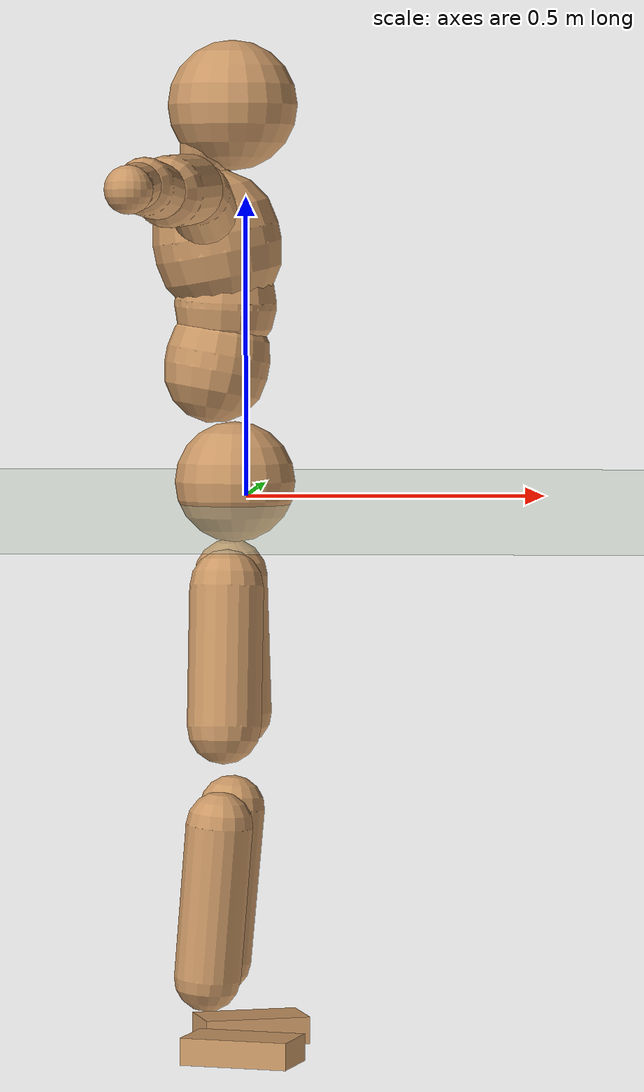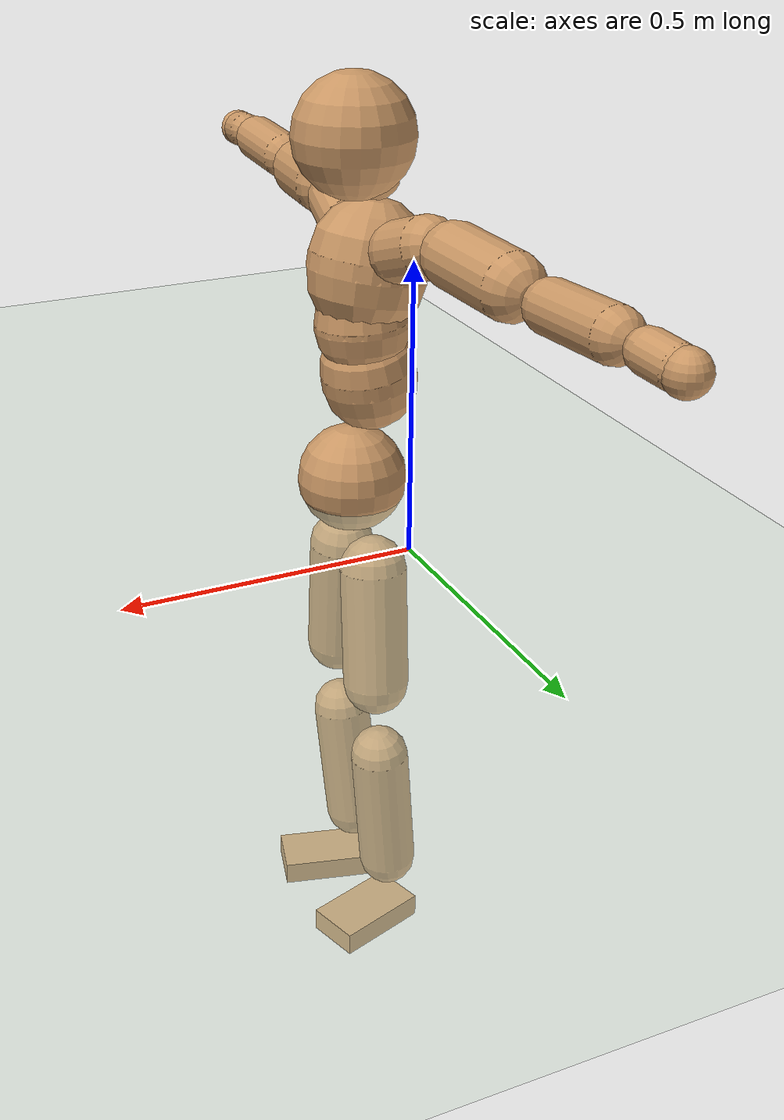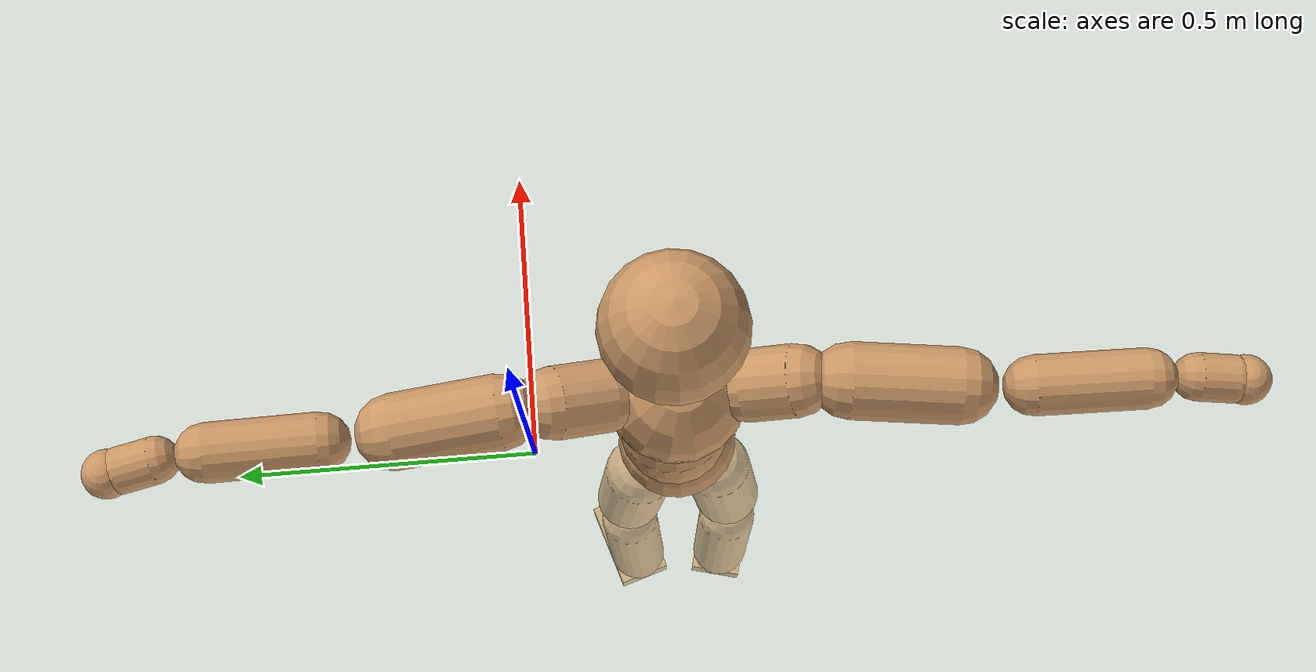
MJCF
<mujoco model="humanoid">
  <compiler coordinate="local"/>
  <default>
    <joint damping="0.0" armature="0.01" stiffness="0.0" limited="true"/>
    <geom conaffinity="1" condim="3" contype="7" margin="0.001" rgba="0.8 0.6 .4 1"/>
  </default>
  <asset>
    <texture type="skybox" builtin="gradient" rgb1=".4 .5 .6" rgb2="0 0 0" width="100" height="100"/>
    <texture builtin="flat" height="1278" mark="cross" markrgb="1 1 1" name="texgeom" random="0.01" rgb1="0.8 0.6 0.4" rgb2="0.8 0.6 0.4" type="cube" width="127"/>
    <texture builtin="checker" height="100" name="texplane" rgb1="0 0 0" rgb2="0.8 0.8 0.8" type="2d" width="100"/>
    <material name="MatPlane" reflectance="0.5" shininess="1" specular="1" texrepeat="60 60" texture="texplane"/>
    <material name="geom" texture="texgeom" texuniform="true"/>
  </asset>
  <worldbody>
    <light cutoff="100" diffuse="1 1 1" dir="-0 0 -1.3" directional="true" exponent="1" pos="0 0 1.3" specular=".1 .1 .1"/>
    <geom conaffinity="1" condim="3" name="floor" pos="0 0 0" rgba="0.8 0.9 0.8 1" size="100 100 .2" type="plane" material="MatPlane"/>
    <body name="Pelvis" pos="-0.0023 -0.2397 0.0344">
      <freejoint name="Pelvis"/>
      <geom type="sphere" contype="1" conaffinity="1" density="500" size="0.0982" pos="0.0000 0.0000 0.0000" name="Pelvis"/>
      <body name="L_Hip" pos="-0.0133 0.0578 -0.0816">
        <joint name="L_Hip_x" type="hinge" pos="0 0 0" axis="1 0 0" stiffness="800" damping="80" armature="0.02" range="-180.0000 180.0000"/>
        <joint name="L_Hip_y" type="hinge" pos="0 0 0" axis="0 1 0" stiffness="800" damping="80" armature="0.02" range="-180.0000 180.0000"/>
        <joint name="L_Hip_z" type="hinge" pos="0 0 0" axis="0 0 1" stiffness="800" damping="80" armature="0.02" range="-180.0000 180.0000"/>
        <geom type="capsule" contype="1" conaffinity="1" density="500" fromto="0.0016 0.0082 -0.0757 0.0066 0.0326 -0.3028" size="0.0605" name="L_Hip"/>
        <body name="L_Knee" pos="0.0082 0.0408 -0.3785">
          <joint name="L_Knee_x" type="hinge" pos="0 0 0" axis="1 0 0" stiffness="800" damping="80" armature="0.02" range="-180.0000 180.0000"/>
          <joint name="L_Knee_y" type="hinge" pos="0 0 0" axis="0 1 0" stiffness="800" damping="80" armature="0.02" range="-180.0000 180.0000"/>
          <joint name="L_Knee_z" type="hinge" pos="0 0 0" axis="0 0 1" stiffness="800" damping="80" armature="0.02" range="-180.0000 180.0000"/>
          <geom type="capsule" contype="1" conaffinity="1" density="500" fromto="-0.0075 -0.0030 -0.0847 -0.0301 -0.0122 -0.3390" size="0.0542" name="L_Knee"/>
          <body name="L_Ankle" pos="-0.0376 -0.0152 -0.4237">
            <joint name="L_Ankle_x" type="hinge" pos="0 0 0" axis="1 0 0" stiffness="800" damping="80" armature="0.02" range="-180.0000 180.0000"/>
            <joint name="L_Ankle_y" type="hinge" pos="0 0 0" axis="0 1 0" stiffness="800" damping="80" armature="0.02" range="-180.0000 180.0000"/>
            <joint name="L_Ankle_z" type="hinge" pos="0 0 0" axis="0 0 1" stiffness="800" damping="80" armature="0.02" range="-180.0000 180.0000"/>
            <geom type="box" contype="1" conaffinity="1" density="500" pos="0.0608 0.0192 -0.0296" size="0.0879 0.0506 0.0223" quat="0.9883 0.0000 0.0000 0.1528" name="L_Ankle"/>
            <body name="L_Toe" pos="0.1215 0.0385 -0.0592">
              <joint name="L_Toe_x" type="hinge" pos="0 0 0" axis="1 0 0" stiffness="500" damping="50" armature="0.02" range="-180.0000 180.0000"/>
              <joint name="L_Toe_y" type="hinge" pos="0 0 0" axis="0 1 0" stiffness="500" damping="50" armature="0.02" range="-180.0000 180.0000"/>
              <joint name="L_Toe_z" type="hinge" pos="0 0 0" axis="0 0 1" stiffness="500" damping="50" armature="0.02" range="-180.0000 180.0000"/>
              <geom type="box" contype="1" conaffinity="1" density="500" pos="0.0000 0.0000 0.0288" size="0.0011 0.0025 0.0011" quat="0.9875 0.0000 0.0000 0.1577" name="L_Toe"/>
            </body>
          </body>
        </body>
      </body>
      <body name="R_Hip" pos="-0.0083 -0.0595 -0.0906">
        <joint name="R_Hip_x" type="hinge" pos="0 0 0" axis="1 0 0" stiffness="800" damping="80" armature="0.02" range="-180.0000 180.0000"/>
        <joint name="R_Hip_y" type="hinge" pos="0 0 0" axis="0 1 0" stiffness="800" damping="80" armature="0.02" range="-180.0000 180.0000"/>
        <joint name="R_Hip_z" type="hinge" pos="0 0 0" axis="0 0 1" stiffness="800" damping="80" armature="0.02" range="-180.0000 180.0000"/>
        <geom type="capsule" contype="1" conaffinity="1" density="500" fromto="-0.0008 -0.0083 -0.0754 -0.0034 -0.0330 -0.3017" size="0.06" name="R_Hip"/>
        <body name="R_Knee" pos="-0.0042 -0.0413 -0.3771">
          <joint name="R_Knee_x" type="hinge" pos="0 0 0" axis="1 0 0" stiffness="800" damping="80" armature="0.02" range="-180.0000 180.0000"/>
          <joint name="R_Knee_y" type="hinge" pos="0 0 0" axis="0 1 0" stiffness="800" damping="80" armature="0.02" range="-180.0000 180.0000"/>
          <joint name="R_Knee_z" type="hinge" pos="0 0 0" axis="0 0 1" stiffness="800" damping="80" armature="0.02" range="-180.0000 180.0000"/>
          <geom type="capsule" contype="1" conaffinity="1" density="500" fromto="-0.0069 0.0038 -0.0834 -0.0275 0.0152 -0.3337" size="0.0545" name="R_Knee"/>
          <body name="R_Ankle" pos="-0.0344 0.019 -0.4172">
            <joint name="R_Ankle_x" type="hinge" pos="0 0 0" axis="1 0 0" stiffness="800" damping="80" armature="0.02" range="-180.0000 180.0000"/>
            <joint name="R_Ankle_y" type="hinge" pos="0 0 0" axis="0 1 0" stiffness="800" damping="80" armature="0.02" range="-180.0000 180.0000"/>
            <joint name="R_Ankle_z" type="hinge" pos="0 0 0" axis="0 0 1" stiffness="800" damping="80" armature="0.02" range="-180.0000 180.0000"/>
            <geom type="box" contype="1" conaffinity="1" density="500" pos="0.0645 -0.0168 -0.0308" size="0.0898 0.0503 0.0222" quat="0.9919 0.0000 0.0000 -0.1271" name="R_Ankle"/>
            <body name="R_Toe" pos="0.1289 -0.0336 -0.0616">
              <joint name="R_Toe_x" type="hinge" pos="0 0 0" axis="1 0 0" stiffness="500" damping="50" armature="0.02" range="-180.0000 180.0000"/>
              <joint name="R_Toe_y" type="hinge" pos="0 0 0" axis="0 1 0" stiffness="500" damping="50" armature="0.02" range="-180.0000 180.0000"/>
              <joint name="R_Toe_z" type="hinge" pos="0 0 0" axis="0 0 1" stiffness="500" damping="50" armature="0.02" range="-180.0000 180.0000"/>
              <geom type="box" contype="1" conaffinity="1" density="500" pos="0.0000 0.0000 0.0303" size="0.0011 0.0025 0.0011" quat="0.9930 0.0000 0.0000 -0.1181" name="R_Toe"/>
            </body>
          </body>
        </body>
      </body>
      <body name="Torso" pos="-0.0416 0.0046 0.126">
        <joint name="Torso_x" type="hinge" pos="0 0 0" axis="1 0 0" stiffness="1000" damping="100" armature="0.02" range="-180.0000 180.0000"/>
        <joint name="Torso_y" type="hinge" pos="0 0 0" axis="0 1 0" stiffness="1000" damping="100" armature="0.02" range="-180.0000 180.0000"/>
        <joint name="Torso_z" type="hinge" pos="0 0 0" axis="0 0 1" stiffness="1000" damping="100" armature="0.02" range="-180.0000 180.0000"/>
        <geom type="capsule" contype="1" conaffinity="1" density="500" fromto="0.0149 0.0029 0.0808 0.0099 0.0019 0.0539" size="0.0848" name="Torso"/>
        <body name="Spine" pos="0.0248 0.0048 0.1347">
          <joint name="Spine_x" type="hinge" pos="0 0 0" axis="1 0 0" stiffness="1000" damping="100" armature="0.02" range="-180.0000 180.0000"/>
          <joint name="Spine_y" type="hinge" pos="0 0 0" axis="0 1 0" stiffness="1000" damping="100" armature="0.02" range="-180.0000 180.0000"/>
          <joint name="Spine_z" type="hinge" pos="0 0 0" axis="0 0 1" stiffness="1000" damping="100" armature="0.02" range="-180.0000 180.0000"/>
          <geom type="capsule" contype="1" conaffinity="1" density="500" fromto="0.0016 -0.0014 0.0327 0.0011 -0.0009 0.0218" size="0.0832" name="Spine"/>
          <body name="Chest" pos="0.0027 -0.0024 0.0545">
            <joint name="Chest_x" type="hinge" pos="0 0 0" axis="1 0 0" stiffness="1000" damping="100" armature="0.02" range="-180.0000 180.0000"/>
            <joint name="Chest_y" type="hinge" pos="0 0 0" axis="0 1 0" stiffness="1000" damping="100" armature="0.02" range="-180.0000 180.0000"/>
            <joint name="Chest_z" type="hinge" pos="0 0 0" axis="0 0 1" stiffness="1000" damping="100" armature="0.02" range="-180.0000 180.0000"/>
            <geom type="capsule" contype="1" conaffinity="1" density="500" fromto="-0.0173 -0.0050 0.0877 -0.0116 -0.0033 0.0585" size="0.1045" name="Chest"/>
            <body name="Neck" pos="-0.0385 -0.0135 0.2111">
              <joint name="Neck_x" type="hinge" pos="0 0 0" axis="1 0 0" stiffness="500" damping="50" armature="0.02" range="-180.0000 180.0000"/>
              <joint name="Neck_y" type="hinge" pos="0 0 0" axis="0 1 0" stiffness="500" damping="50" armature="0.02" range="-180.0000 180.0000"/>
              <joint name="Neck_z" type="hinge" pos="0 0 0" axis="0 0 1" stiffness="500" damping="50" armature="0.02" range="-180.0000 180.0000"/>
              <geom type="capsule" contype="1" conaffinity="1" density="500" fromto="0.0099 0.0020 0.0169 0.0396 0.0079 0.0675" size="0.0462" name="Neck"/>
              <body name="Head" pos="0.0495 0.0099 0.0844">
                <joint name="Head_x" type="hinge" pos="0 0 0" axis="1 0 0" stiffness="500" damping="50" armature="0.02" range="-180.0000 180.0000"/>
                <joint name="Head_y" type="hinge" pos="0 0 0" axis="0 1 0" stiffness="500" damping="50" armature="0.02" range="-180.0000 180.0000"/>
                <joint name="Head_z" type="hinge" pos="0 0 0" axis="0 0 1" stiffness="500" damping="50" armature="0.02" range="-180.0000 180.0000"/>
                <geom type="sphere" contype="1" conaffinity="1" density="500" size="0.1055" pos="0.0000 0.0000 0.0000" name="Head"/>
              </body>
            </body>
            <body name="L_Thorax" pos="-0.0222 0.0716 0.1143">
              <joint name="L_Thorax_x" type="hinge" pos="0 0 0" axis="1 0 0" stiffness="500" damping="50" armature="0.02" range="-180.0000 180.0000"/>
              <joint name="L_Thorax_y" type="hinge" pos="0 0 0" axis="0 1 0" stiffness="500" damping="50" armature="0.02" range="-180.0000 180.0000"/>
              <joint name="L_Thorax_z" type="hinge" pos="0 0 0" axis="0 0 1" stiffness="500" damping="50" armature="0.02" range="-180.0000 180.0000"/>
              <geom type="capsule" contype="1" conaffinity="1" density="500" fromto="-0.0041 0.0247 0.0085 -0.0166 0.0988 0.0341" size="0.0534" name="L_Thorax"/>
              <body name="L_Shoulder" pos="-0.0207 0.1234 0.0426">
                <joint name="L_Shoulder_x" type="hinge" pos="0 0 0" axis="1 0 0" stiffness="500" damping="50" armature="0.02" range="-720.0000 720.0000"/>
                <joint name="L_Shoulder_y" type="hinge" pos="0 0 0" axis="0 1 0" stiffness="500" damping="50" armature="0.02" range="-720.0000 720.0000"/>
                <joint name="L_Shoulder_z" type="hinge" pos="0 0 0" axis="0 0 1" stiffness="500" damping="50" armature="0.02" range="-720.0000 720.0000"/>
                <geom type="capsule" contype="1" conaffinity="1" density="500" fromto="-0.0047 0.0504 -0.0026 -0.0190 0.2017 -0.0105" size="0.0554" name="L_Shoulder"/>
                <body name="L_Elbow" pos="-0.0237 0.2521 -0.0132">
                  <joint name="L_Elbow_x" type="hinge" pos="0 0 0" axis="1 0 0" stiffness="500" damping="50" armature="0.02" range="-720.0000 720.0000"/>
                  <joint name="L_Elbow_y" type="hinge" pos="0 0 0" axis="0 1 0" stiffness="500" damping="50" armature="0.02" range="-720.0000 720.0000"/>
                  <joint name="L_Elbow_z" type="hinge" pos="0 0 0" axis="0 0 1" stiffness="500" damping="50" armature="0.02" range="-720.0000 720.0000"/>
                  <geom type="capsule" contype="1" conaffinity="1" density="500" fromto="-0.0016 0.0527 0.0024 -0.0062 0.2108 0.0097" size="0.043" name="L_Elbow"/>
                  <body name="L_Wrist" pos="-0.0078 0.2635 0.0121">
                    <joint name="L_Wrist_x" type="hinge" pos="0 0 0" axis="1 0 0" stiffness="300" damping="30" armature="0.02" range="-180.0000 180.0000"/>
                    <joint name="L_Wrist_y" type="hinge" pos="0 0 0" axis="0 1 0" stiffness="300" damping="30" armature="0.02" range="-180.0000 180.0000"/>
                    <joint name="L_Wrist_z" type="hinge" pos="0 0 0" axis="0 0 1" stiffness="300" damping="30" armature="0.02" range="-180.0000 180.0000"/>
                    <geom type="capsule" contype="1" conaffinity="1" density="500" fromto="-0.0031 0.0172 -0.0021 -0.0123 0.0689 -0.0083" size="0.0341" name="L_Wrist"/>
                    <body name="L_Hand" pos="-0.0154 0.0861 -0.0104">
                      <joint name="L_Hand_x" type="hinge" pos="0 0 0" axis="1 0 0" stiffness="300" damping="30" armature="0.02" range="-180.0000 180.0000"/>
                      <joint name="L_Hand_y" type="hinge" pos="0 0 0" axis="0 1 0" stiffness="300" damping="30" armature="0.02" range="-180.0000 180.0000"/>
                      <joint name="L_Hand_z" type="hinge" pos="0 0 0" axis="0 0 1" stiffness="300" damping="30" armature="0.02" range="-180.0000 180.0000"/>
                      <geom type="sphere" contype="1" conaffinity="1" density="500" size="0.0354" pos="0.0000 0.0000 0.0000" name="L_Hand"/>
                    </body>
                  </body>
                </body>
              </body>
            </body>
            <body name="R_Thorax" pos="-0.0259 -0.083 0.1132">
              <joint name="R_Thorax_x" type="hinge" pos="0 0 0" axis="1 0 0" stiffness="500" damping="50" armature="0.02" range="-180.0000 180.0000"/>
              <joint name="R_Thorax_y" type="hinge" pos="0 0 0" axis="0 1 0" stiffness="500" damping="50" armature="0.02" range="-180.0000 180.0000"/>
              <joint name="R_Thorax_z" type="hinge" pos="0 0 0" axis="0 0 1" stiffness="500" damping="50" armature="0.02" range="-180.0000 180.0000"/>
              <geom type="capsule" contype="1" conaffinity="1" density="500" fromto="-0.0019 -0.0226 0.0088 -0.0078 -0.0904 0.0352" size="0.0533" name="R_Thorax"/>
              <body name="R_Shoulder" pos="-0.0097 -0.1129 0.044">
                <joint name="R_Shoulder_x" type="hinge" pos="0 0 0" axis="1 0 0" stiffness="500" damping="50" armature="0.02" range="-720.0000 720.0000"/>
                <joint name="R_Shoulder_y" type="hinge" pos="0 0 0" axis="0 1 0" stiffness="500" damping="50" armature="0.02" range="-720.0000 720.0000"/>
                <joint name="R_Shoulder_z" type="hinge" pos="0 0 0" axis="0 0 1" stiffness="500" damping="50" armature="0.02" range="-720.0000 720.0000"/>
                <geom type="capsule" contype="1" conaffinity="1" density="500" fromto="-0.0062 -0.0514 -0.0021 -0.0248 -0.2058 -0.0082" size="0.0559" name="R_Shoulder"/>
                <body name="R_Elbow" pos="-0.031 -0.2572 -0.0103">
                  <joint name="R_Elbow_x" type="hinge" pos="0 0 0" axis="1 0 0" stiffness="500" damping="50" armature="0.02" range="-720.0000 720.0000"/>
                  <joint name="R_Elbow_y" type="hinge" pos="0 0 0" axis="0 1 0" stiffness="500" damping="50" armature="0.02" range="-720.0000 720.0000"/>
                  <joint name="R_Elbow_z" type="hinge" pos="0 0 0" axis="0 0 1" stiffness="500" damping="50" armature="0.02" range="-720.0000 720.0000"/>
                  <geom type="capsule" contype="1" conaffinity="1" density="500" fromto="-0.0013 -0.0532 0.0014 -0.0053 -0.2128 0.0054" size="0.0437" name="R_Elbow"/>
                  <body name="R_Wrist" pos="-0.0066 -0.266 0.0068">
                    <joint name="R_Wrist_x" type="hinge" pos="0 0 0" axis="1 0 0" stiffness="300" damping="30" armature="0.02" range="-180.0000 180.0000"/>
                    <joint name="R_Wrist_y" type="hinge" pos="0 0 0" axis="0 1 0" stiffness="300" damping="30" armature="0.02" range="-180.0000 180.0000"/>
                    <joint name="R_Wrist_z" type="hinge" pos="0 0 0" axis="0 0 1" stiffness="300" damping="30" armature="0.02" range="-180.0000 180.0000"/>
                    <geom type="capsule" contype="1" conaffinity="1" density="500" fromto="-0.0020 -0.0177 -0.0017 -0.0079 -0.0706 -0.0069" size="0.0348" name="R_Wrist"/>
                    <body name="R_Hand" pos="-0.0099 -0.0883 -0.0086">
                      <joint name="R_Hand_x" type="hinge" pos="0 0 0" axis="1 0 0" stiffness="300" damping="30" armature="0.02" range="-180.0000 180.0000"/>
                      <joint name="R_Hand_y" type="hinge" pos="0 0 0" axis="0 1 0" stiffness="300" damping="30" armature="0.02" range="-180.0000 180.0000"/>
                      <joint name="R_Hand_z" type="hinge" pos="0 0 0" axis="0 0 1" stiffness="300" damping="30" armature="0.02" range="-180.0000 180.0000"/>
                      <geom type="sphere" contype="1" conaffinity="1" density="500" size="0.0360" pos="0.0000 0.0000 0.0000" name="R_Hand"/>
                    </body>
                  </body>
                </body>
              </body>
            </body>
          </body>
        </body>
      </body>
    </body>
  </worldbody>
  <actuator>
    <motor name="L_Hip_x" joint="L_Hip_x" gear="500"/>
    <motor name="L_Hip_y" joint="L_Hip_y" gear="500"/>
    <motor name="L_Hip_z" joint="L_Hip_z" gear="500"/>
    <motor name="L_Knee_x" joint="L_Knee_x" gear="500"/>
    <motor name="L_Knee_y" joint="L_Knee_y" gear="500"/>
    <motor name="L_Knee_z" joint="L_Knee_z" gear="500"/>
    <motor name="L_Ankle_x" joint="L_Ankle_x" gear="500"/>
    <motor name="L_Ankle_y" joint="L_Ankle_y" gear="500"/>
    <motor name="L_Ankle_z" joint="L_Ankle_z" gear="500"/>
    <motor name="L_Toe_x" joint="L_Toe_x" gear="500"/>
    <motor name="L_Toe_y" joint="L_Toe_y" gear="500"/>
    <motor name="L_Toe_z" joint="L_Toe_z" gear="500"/>
    <motor name="R_Hip_x" joint="R_Hip_x" gear="500"/>
    <motor name="R_Hip_y" joint="R_Hip_y" gear="500"/>
    <motor name="R_Hip_z" joint="R_Hip_z" gear="500"/>
    <motor name="R_Knee_x" joint="R_Knee_x" gear="500"/>
    <motor name="R_Knee_y" joint="R_Knee_y" gear="500"/>
    <motor name="R_Knee_z" joint="R_Knee_z" gear="500"/>
    <motor name="R_Ankle_x" joint="R_Ankle_x" gear="500"/>
    <motor name="R_Ankle_y" joint="R_Ankle_y" gear="500"/>
    <motor name="R_Ankle_z" joint="R_Ankle_z" gear="500"/>
    <motor name="R_Toe_x" joint="R_Toe_x" gear="500"/>
    <motor name="R_Toe_y" joint="R_Toe_y" gear="500"/>
    <motor name="R_Toe_z" joint="R_Toe_z" gear="500"/>
    <motor name="Torso_x" joint="Torso_x" gear="500"/>
    <motor name="Torso_y" joint="Torso_y" gear="500"/>
    <motor name="Torso_z" joint="Torso_z" gear="500"/>
    <motor name="Spine_x" joint="Spine_x" gear="500"/>
    <motor name="Spine_y" joint="Spine_y" gear="500"/>
    <motor name="Spine_z" joint="Spine_z" gear="500"/>
    <motor name="Chest_x" joint="Chest_x" gear="500"/>
    <motor name="Chest_y" joint="Chest_y" gear="500"/>
    <motor name="Chest_z" joint="Chest_z" gear="500"/>
    <motor name="Neck_x" joint="Neck_x" gear="500"/>
    <motor name="Neck_y" joint="Neck_y" gear="500"/>
    <motor name="Neck_z" joint="Neck_z" gear="500"/>
    <motor name="Head_x" joint="Head_x" gear="500"/>
    <motor name="Head_y" joint="Head_y" gear="500"/>
    <motor name="Head_z" joint="Head_z" gear="500"/>
    <motor name="L_Thorax_x" joint="L_Thorax_x" gear="500"/>
    <motor name="L_Thorax_y" joint="L_Thorax_y" gear="500"/>
    <motor name="L_Thorax_z" joint="L_Thorax_z" gear="500"/>
    <motor name="L_Shoulder_x" joint="L_Shoulder_x" gear="500"/>
    <motor name="L_Shoulder_y" joint="L_Shoulder_y" gear="500"/>
    <motor name="L_Shoulder_z" joint="L_Shoulder_z" gear="500"/>
    <motor name="L_Elbow_x" joint="L_Elbow_x" gear="500"/>
    <motor name="L_Elbow_y" joint="L_Elbow_y" gear="500"/>
    <motor name="L_Elbow_z" joint="L_Elbow_z" gear="500"/>
    <motor name="L_Wrist_x" joint="L_Wrist_x" gear="500"/>
    <motor name="L_Wrist_y" joint="L_Wrist_y" gear="500"/>
    <motor name="L_Wrist_z" joint="L_Wrist_z" gear="500"/>
    <motor name="L_Hand_x" joint="L_Hand_x" gear="500"/>
    <motor name="L_Hand_y" joint="L_Hand_y" gear="500"/>
    <motor name="L_Hand_z" joint="L_Hand_z" gear="500"/>
    <motor name="R_Thorax_x" joint="R_Thorax_x" gear="500"/>
    <motor name="R_Thorax_y" joint="R_Thorax_y" gear="500"/>
    <motor name="R_Thorax_z" joint="R_Thorax_z" gear="500"/>
    <motor name="R_Shoulder_x" joint="R_Shoulder_x" gear="500"/>
    <motor name="R_Shoulder_y" joint="R_Shoulder_y" gear="500"/>
    <motor name="R_Shoulder_z" joint="R_Shoulder_z" gear="500"/>
    <motor name="R_Elbow_x" joint="R_Elbow_x" gear="500"/>
    <motor name="R_Elbow_y" joint="R_Elbow_y" gear="500"/>
    <motor name="R_Elbow_z" joint="R_Elbow_z" gear="500"/>
    <motor name="R_Wrist_x" joint="R_Wrist_x" gear="500"/>
    <motor name="R_Wrist_y" joint="R_Wrist_y" gear="500"/>
    <motor name="R_Wrist_z" joint="R_Wrist_z" gear="500"/>
    <motor name="R_Hand_x" joint="R_Hand_x" gear="500"/>
    <motor name="R_Hand_y" joint="R_Hand_y" gear="500"/>
    <motor name="R_Hand_z" joint="R_Hand_z" gear="500"/>
  </actuator>
  <contact>
    <exclude body1="Torso" body2="Chest"/>
    <exclude body1="Head" body2="Chest"/>
    <exclude body1="R_Knee" body2="R_Toe"/>
    <exclude body1="R_Knee" body2="L_Ankle"/>
    <exclude body1="R_Knee" body2="L_Toe"/>
    <exclude body1="L_Knee" body2="L_Toe"/>
    <exclude body1="L_Knee" body2="R_Ankle"/>
    <exclude body1="L_Knee" body2="R_Toe"/>
    <exclude body1="L_Shoulder" body2="Chest"/>
    <exclude body1="R_Shoulder" body2="Chest"/>
  </contact>
  <sensor/>
  <size njmax="700" nconmax="700"/>
</mujoco>
